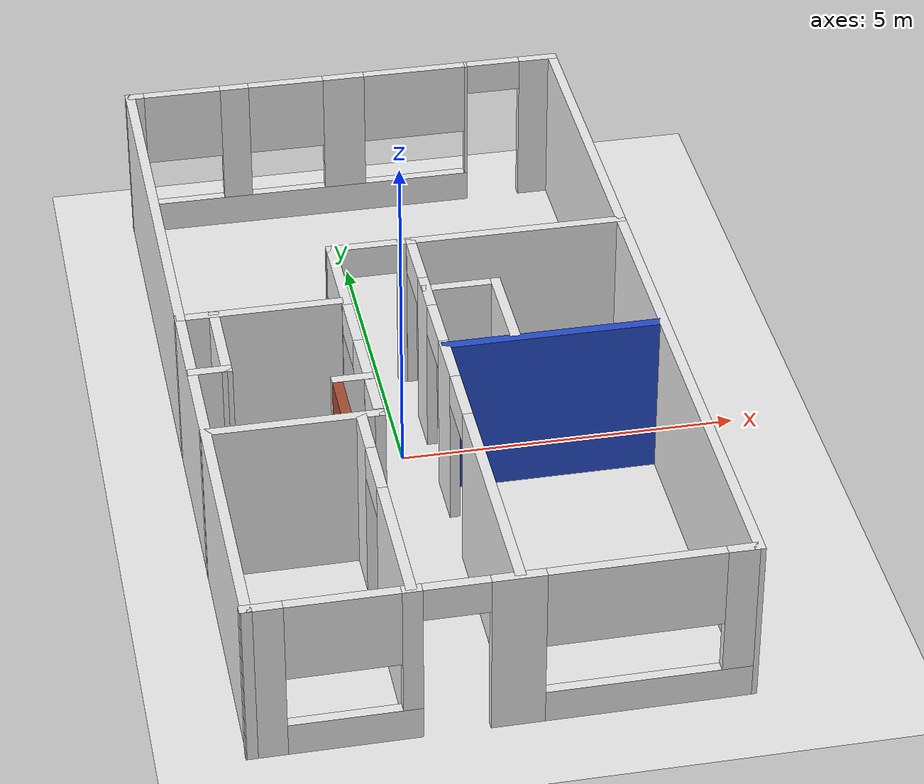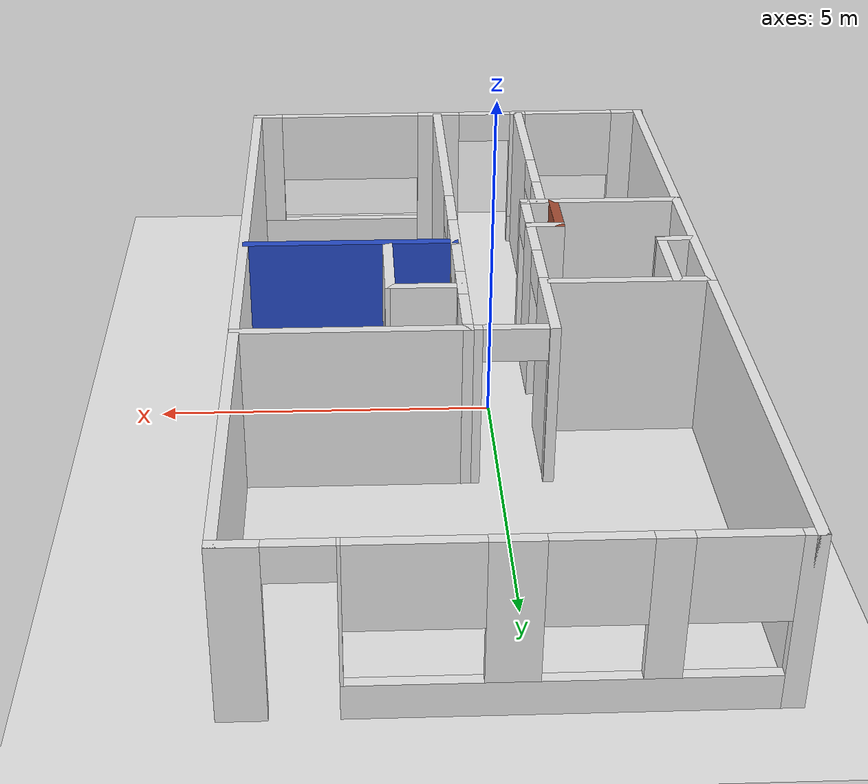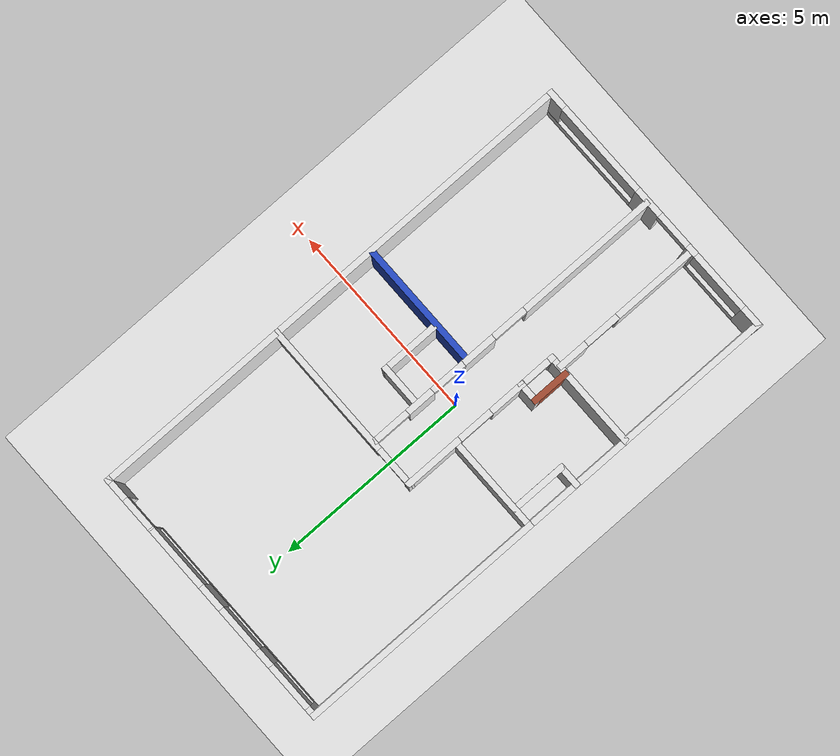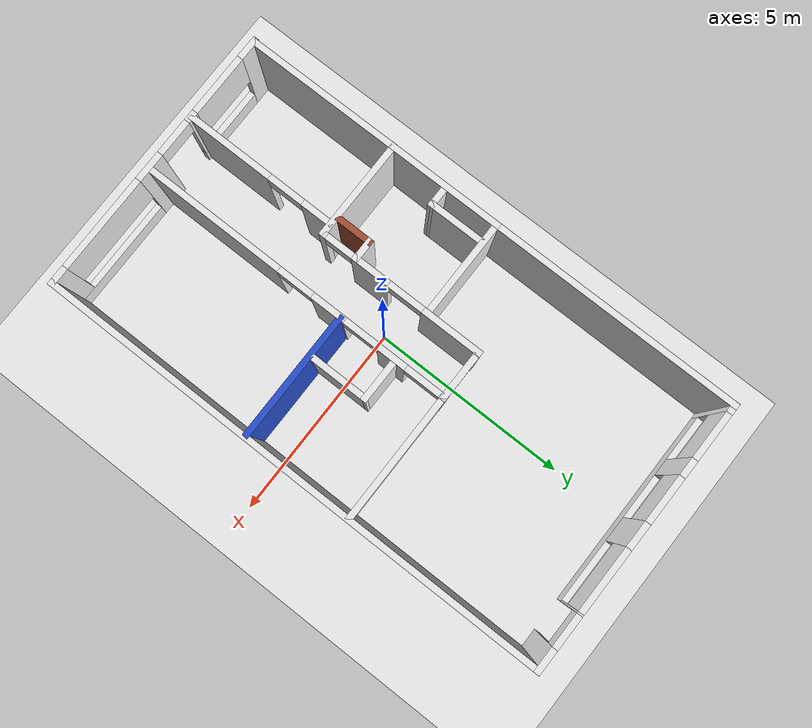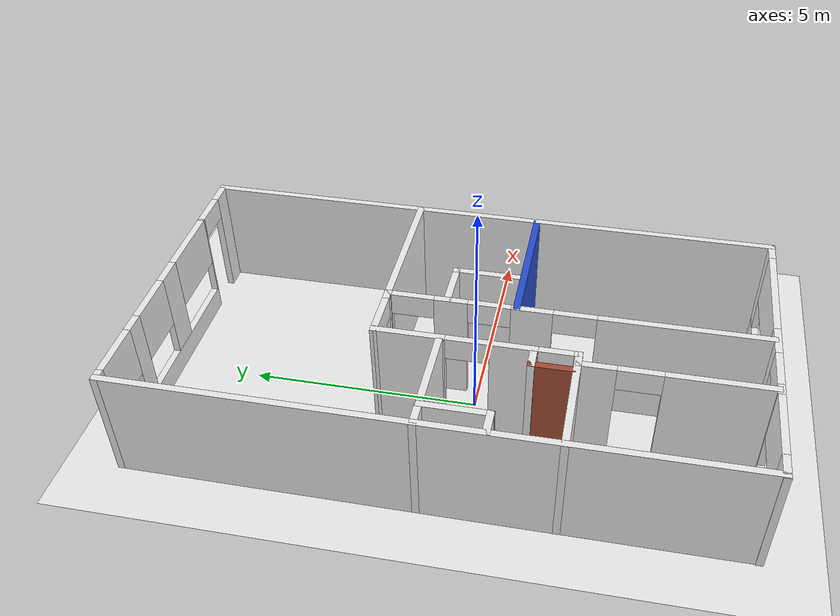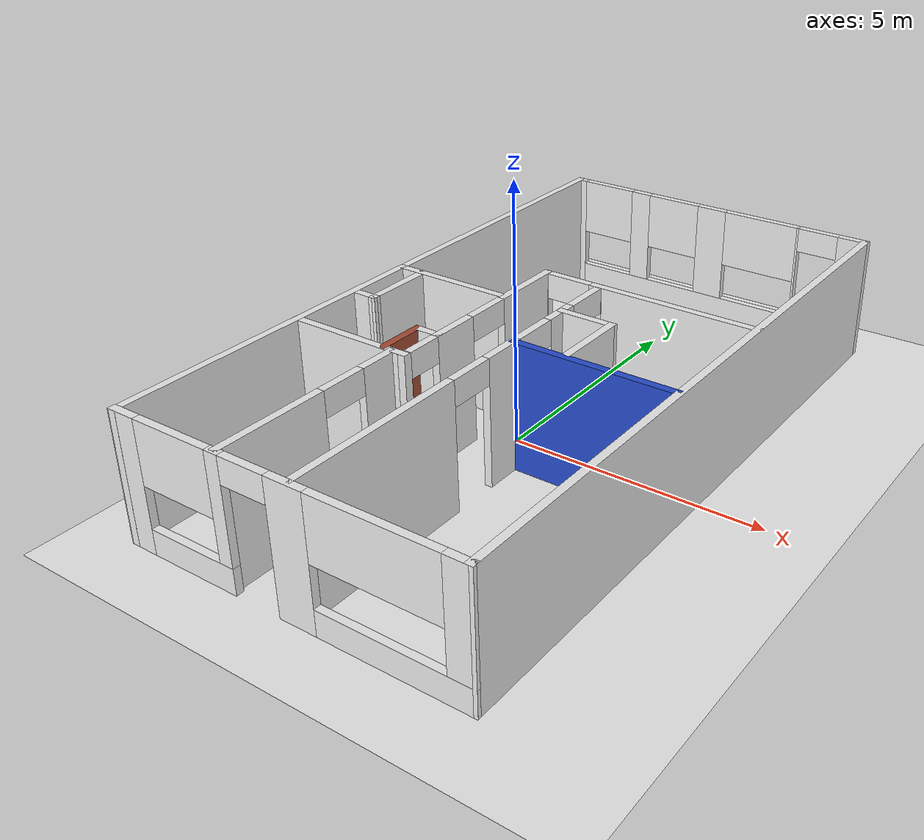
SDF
<sdf version="1.6">
 <world name="default">
  <model name="ground_plane">
   <static>1</static>
   <link name="link">
    <collision name="collision">
     <geometry><plane><normal>0 0 1</normal><size>100 100</size></plane></geometry>
     <surface>
      <contact><collide_bitmask>65535</collide_bitmask></contact>
      <friction><ode><mu>100</mu><mu2>50</mu2></ode></friction>
     </surface>
    </collision>
    <visual name="visual">
     <cast_shadows>0</cast_shadows>
     <geometry><plane><normal>0 0 1</normal><size>100 100</size></plane></geometry>
     <material>
      <script><uri>file://media/materials/scripts/gazebo.material</uri><name>Gazebo/White</name></script>
     </material>
    </visual>
   </link>
  </model>
  <model name="myapartment">
   <pose>0.279592 0.405357 0 0 -0 0</pose>
   <link name="Wall_0">
    <pose>0.004026 6.44086 0 0 -0 0</pose>
    <visual name="Wall_0_Visual_0">
     <pose>-3.32899 0 1.25 0 -0 0</pose>
     <geometry><box><size>0.289947 0.15 2.5</size></box></geometry>
     <material>
      <script><uri>file://media/materials/scripts/gazebo.material</uri><name>Gazebo/White</name></script>
      <ambient>1 1 1 1</ambient>
     </material>
     <meta><layer>0</layer></meta>
    </visual>
    <collision name="Wall_0_Collision_0">
     <geometry><box><size>0.289947 0.15 2.5</size></box></geometry>
     <pose>-3.32899 0 1.25 0 -0 0</pose>
    </collision>
    <visual name="Wall_0_Visual_1">
     <pose>3.1619 0 1.25 0 -0 0</pose>
     <geometry><box><size>0.624124 0.15 2.5</size></box></geometry>
     <material>
      <script><uri>file://media/materials/scripts/gazebo.material</uri><name>Gazebo/White</name></script>
      <ambient>1 1 1 1</ambient>
     </material>
     <meta><layer>0</layer></meta>
    </visual>
    <collision name="Wall_0_Collision_1">
     <geometry><box><size>0.624124 0.15 2.5</size></box></geometry>
     <pose>3.1619 0 1.25 0 -0 0</pose>
    </collision>
    <visual name="Wall_0_Visual_2">
     <pose>-0.589588 0 0.25 0 -0 0</pose>
     <geometry><box><size>5.18885 0.15 0.5</size></box></geometry>
     <material>
      <script><uri>file://media/materials/scripts/gazebo.material</uri><name>Gazebo/White</name></script>
      <ambient>1 1 1 1</ambient>
     </material>
     <meta><layer>0</layer></meta>
    </visual>
    <collision name="Wall_0_Collision_2">
     <geometry><box><size>5.18885 0.15 0.5</size></box></geometry>
     <pose>-0.589588 0 0.25 0 -0 0</pose>
    </collision>
    <visual name="Wall_0_Visual_3">
     <pose>-1.75147 0 1.5 0 -0 0</pose>
     <geometry><box><size>0.453064 0.15 2</size></box></geometry>
     <material>
      <script><uri>file://media/materials/scripts/gazebo.material</uri><name>Gazebo/White</name></script>
      <ambient>1 1 1 1</ambient>
     </material>
     <meta><layer>0</layer></meta>
    </visual>
    <collision name="Wall_0_Collision_3">
     <geometry><box><size>0.453064 0.15 2</size></box></geometry>
     <pose>-1.75147 0 1.5 0 -0 0</pose>
    </collision>
    <visual name="Wall_0_Visual_4">
     <pose>-0.00315 0 1.5 0 -0 0</pose>
     <geometry><box><size>0.661624 0.15 2</size></box></geometry>
     <material>
      <script><uri>file://media/materials/scripts/gazebo.material</uri><name>Gazebo/White</name></script>
      <ambient>1 1 1 1</ambient>
     </material>
     <meta><layer>0</layer></meta>
    </visual>
    <collision name="Wall_0_Collision_4">
     <geometry><box><size>0.661624 0.15 2</size></box></geometry>
     <pose>-0.00315 0 1.5 0 -0 0</pose>
    </collision>
    <visual name="Wall_0_Visual_5">
     <pose>1.98354 0 1.5 0 -0 0</pose>
     <geometry><box><size>0.042595 0.15 2</size></box></geometry>
     <material>
      <script><uri>file://media/materials/scripts/gazebo.material</uri><name>Gazebo/White</name></script>
      <ambient>1 1 1 1</ambient>
     </material>
     <meta><layer>0</layer></meta>
    </visual>
    <collision name="Wall_0_Collision_5">
     <geometry><box><size>0.042595 0.15 2</size></box></geometry>
     <pose>1.98354 0 1.5 0 -0 0</pose>
    </collision>
    <visual name="Wall_0_Visual_6">
     <pose>-2.58101 0 1.9 0 -0 0</pose>
     <geometry><box><size>1.20601 0.15 1.2</size></box></geometry>
     <material>
      <script><uri>file://media/materials/scripts/gazebo.material</uri><name>Gazebo/White</name></script>
      <ambient>1 1 1 1</ambient>
     </material>
     <meta><layer>0</layer></meta>
    </visual>
    <collision name="Wall_0_Collision_6">
     <geometry><box><size>1.20601 0.15 1.2</size></box></geometry>
     <pose>-2.58101 0 1.9 0 -0 0</pose>
    </collision>
    <visual name="Wall_0_Visual_7">
     <pose>-0.92945 0 1.9 0 -0 0</pose>
     <geometry><box><size>1.19097 0.15 1.2</size></box></geometry>
     <material>
      <script><uri>file://media/materials/scripts/gazebo.material</uri><name>Gazebo/White</name></script>
      <ambient>1 1 1 1</ambient>
     </material>
     <meta><layer>0</layer></meta>
    </visual>
    <collision name="Wall_0_Collision_7">
     <geometry><box><size>1.19097 0.15 1.2</size></box></geometry>
     <pose>-0.92945 0 1.9 0 -0 0</pose>
    </collision>
    <visual name="Wall_0_Visual_8">
     <pose>1.14495 0 1.9 0 -0 0</pose>
     <geometry><box><size>1.63458 0.15 1.2</size></box></geometry>
     <material>
      <script><uri>file://media/materials/scripts/gazebo.material</uri><name>Gazebo/White</name></script>
      <ambient>1 1 1 1</ambient>
     </material>
     <meta><layer>0</layer></meta>
    </visual>
    <collision name="Wall_0_Collision_8">
     <geometry><box><size>1.63458 0.15 1.2</size></box></geometry>
     <pose>1.14495 0 1.9 0 -0 0</pose>
    </collision>
    <visual name="Wall_0_Visual_9">
     <pose>2.42734 0 2.25 0 -0 0</pose>
     <geometry><box><size>0.845 0.15 0.5</size></box></geometry>
     <material>
      <script><uri>file://media/materials/scripts/gazebo.material</uri><name>Gazebo/White</name></script>
      <ambient>1 1 1 1</ambient>
     </material>
     <meta><layer>0</layer></meta>
    </visual>
    <collision name="Wall_0_Collision_9">
     <geometry><box><size>0.845 0.15 0.5</size></box></geometry>
     <pose>2.42734 0 2.25 0 -0 0</pose>
    </collision>
   </link>
   <link name="Wall_11">
    <pose>0.212101 -2.39403 0 0 -0 -1.5708</pose>
    <visual name="Wall_11_Visual_0">
     <pose>-3.96072 0 1.25 0 -0 0</pose>
     <geometry><box><size>0.163567 0.15 2.5</size></box></geometry>
     <material>
      <script><uri>file://media/materials/scripts/gazebo.material</uri><name>Gazebo/White</name></script>
      <ambient>1 1 1 1</ambient>
     </material>
     <meta><layer>0</layer></meta>
    </visual>
    <collision name="Wall_11_Collision_0">
     <geometry><box><size>0.163567 0.15 2.5</size></box></geometry>
     <pose>-3.96072 0 1.25 0 -0 0</pose>
    </collision>
    <visual name="Wall_11_Visual_1">
     <pose>-2.60981 0 1.25 0 -0 0</pose>
     <geometry><box><size>0.718238 0.15 2.5</size></box></geometry>
     <material>
      <script><uri>file://media/materials/scripts/gazebo.material</uri><name>Gazebo/White</name></script>
      <ambient>1 1 1 1</ambient>
     </material>
     <meta><layer>0</layer></meta>
    </visual>
    <collision name="Wall_11_Collision_1">
     <geometry><box><size>0.718238 0.15 2.5</size></box></geometry>
     <pose>-2.60981 0 1.25 0 -0 0</pose>
    </collision>
    <visual name="Wall_11_Visual_2">
     <pose>-0.904498 0 1.25 0 -0 0</pose>
     <geometry><box><size>0.872395 0.15 2.5</size></box></geometry>
     <material>
      <script><uri>file://media/materials/scripts/gazebo.material</uri><name>Gazebo/White</name></script>
      <ambient>1 1 1 1</ambient>
     </material>
     <meta><layer>0</layer></meta>
    </visual>
    <collision name="Wall_11_Collision_2">
     <geometry><box><size>0.872395 0.15 2.5</size></box></geometry>
     <pose>-0.904498 0 1.25 0 -0 0</pose>
    </collision>
    <visual name="Wall_11_Visual_3">
     <pose>2.2421 0 1.25 0 -0 0</pose>
     <geometry><box><size>3.6008 0.15 2.5</size></box></geometry>
     <material>
      <script><uri>file://media/materials/scripts/gazebo.material</uri><name>Gazebo/White</name></script>
      <ambient>1 1 1 1</ambient>
     </material>
     <meta><layer>0</layer></meta>
    </visual>
    <collision name="Wall_11_Collision_3">
     <geometry><box><size>3.6008 0.15 2.5</size></box></geometry>
     <pose>2.2421 0 1.25 0 -0 0</pose>
    </collision>
    <visual name="Wall_11_Visual_4">
     <pose>-3.42393 0 2.25 0 -0 0</pose>
     <geometry><box><size>0.91 0.15 0.5</size></box></geometry>
     <material>
      <script><uri>file://media/materials/scripts/gazebo.material</uri><name>Gazebo/White</name></script>
      <ambient>1 1 1 1</ambient>
     </material>
     <meta><layer>0</layer></meta>
    </visual>
    <collision name="Wall_11_Collision_4">
     <geometry><box><size>0.91 0.15 0.5</size></box></geometry>
     <pose>-3.42393 0 2.25 0 -0 0</pose>
    </collision>
    <visual name="Wall_11_Visual_5">
     <pose>-1.7957 0 2.25 0 -0 0</pose>
     <geometry><box><size>0.91 0.15 0.5</size></box></geometry>
     <material>
      <script><uri>file://media/materials/scripts/gazebo.material</uri><name>Gazebo/White</name></script>
      <ambient>1 1 1 1</ambient>
     </material>
     <meta><layer>0</layer></meta>
    </visual>
    <collision name="Wall_11_Collision_5">
     <geometry><box><size>0.91 0.15 0.5</size></box></geometry>
     <pose>-1.7957 0 2.25 0 -0 0</pose>
    </collision>
    <visual name="Wall_11_Visual_6">
     <pose>-0.0133 0 2.25 0 -0 0</pose>
     <geometry><box><size>0.91 0.15 0.5</size></box></geometry>
     <material>
      <script><uri>file://media/materials/scripts/gazebo.material</uri><name>Gazebo/White</name></script>
      <ambient>1 1 1 1</ambient>
     </material>
     <meta><layer>0</layer></meta>
    </visual>
    <collision name="Wall_11_Collision_6">
     <geometry><box><size>0.91 0.15 0.5</size></box></geometry>
     <pose>-0.0133 0 2.25 0 -0 0</pose>
    </collision>
   </link>
   <link name="Wall_13">
    <collision name="Wall_13_Collision">
     <geometry><box><size>3.25 0.15 2.5</size></box></geometry>
     <pose>0 0 1.25 0 -0 0</pose>
    </collision>
    <visual name="Wall_13_Visual">
     <pose>0 0 1.25 0 -0 0</pose>
     <geometry><box><size>3.25 0.15 2.5</size></box></geometry>
     <material>
      <script><uri>file://media/materials/scripts/gazebo.material</uri><name>Gazebo/Blue</name></script>
      <ambient>1 1 1 1</ambient>
     </material>
     <meta><layer>0</layer></meta>
    </visual>
    <pose>1.79413 -1.1673 0 0 -0 0</pose>
   </link>
   <link name="Wall_15">
    <collision name="Wall_15_Collision">
     <geometry><box><size>2.57057 0.15 2.5</size></box></geometry>
     <pose>0 0 1.25 0 -0 0</pose>
    </collision>
    <visual name="Wall_15_Visual">
     <pose>0 0 1.25 0 -0 0</pose>
     <geometry><box><size>2.57057 0.15 2.5</size></box></geometry>
     <material>
      <script><uri>file://media/materials/scripts/gazebo.material</uri><name>Gazebo/White</name></script>
      <ambient>1 1 1 1</ambient>
     </material>
     <meta><layer>0</layer></meta>
    </visual>
    <pose>-2.18397 -2.58264 0 0 -0 0.001239</pose>
   </link>
   <link name="Wall_16">
    <pose>-0.976474 -0.504642 0 0 -0 1.57224</pose>
    <visual name="Wall_16_Visual_0">
     <pose>-2.06696 0 1.25 0 -0 0</pose>
     <geometry><box><size>0.16959 0.15 2.5</size></box></geometry>
     <material>
      <script><uri>file://media/materials/scripts/gazebo.material</uri><name>Gazebo/White</name></script>
      <ambient>1 1 1 1</ambient>
     </material>
     <meta><layer>0</layer></meta>
    </visual>
    <collision name="Wall_16_Collision_0">
     <geometry><box><size>0.16959 0.15 2.5</size></box></geometry>
     <pose>-2.06696 0 1.25 0 -0 0</pose>
    </collision>
    <visual name="Wall_16_Visual_1">
     <pose>-0.787342 0 1.25 0 -0 0</pose>
     <geometry><box><size>0.969649 0.15 2.5</size></box></geometry>
     <material>
      <script><uri>file://media/materials/scripts/gazebo.material</uri><name>Gazebo/White</name></script>
      <ambient>1 1 1 1</ambient>
     </material>
     <meta><layer>0</layer></meta>
    </visual>
    <collision name="Wall_16_Collision_1">
     <geometry><box><size>0.969649 0.15 2.5</size></box></geometry>
     <pose>-0.787342 0 1.25 0 -0 0</pose>
    </collision>
    <visual name="Wall_16_Visual_2">
     <pose>1.37962 0 1.25 0 -0 0</pose>
     <geometry><box><size>1.54427 0.15 2.5</size></box></geometry>
     <material>
      <script><uri>file://media/materials/scripts/gazebo.material</uri><name>Gazebo/White</name></script>
      <ambient>1 1 1 1</ambient>
     </material>
     <meta><layer>0</layer></meta>
    </visual>
    <collision name="Wall_16_Collision_2">
     <geometry><box><size>1.54427 0.15 2.5</size></box></geometry>
     <pose>1.37962 0 1.25 0 -0 0</pose>
    </collision>
    <visual name="Wall_16_Visual_3">
     <pose>-1.62717 0 2.25 0 -0 0</pose>
     <geometry><box><size>0.71 0.15 0.5</size></box></geometry>
     <material>
      <script><uri>file://media/materials/scripts/gazebo.material</uri><name>Gazebo/White</name></script>
      <ambient>1 1 1 1</ambient>
     </material>
     <meta><layer>0</layer></meta>
    </visual>
    <collision name="Wall_16_Collision_3">
     <geometry><box><size>0.71 0.15 0.5</size></box></geometry>
     <pose>-1.62717 0 2.25 0 -0 0</pose>
    </collision>
    <visual name="Wall_16_Visual_4">
     <pose>0.152483 0 2.25 0 -0 0</pose>
     <geometry><box><size>0.91 0.15 0.5</size></box></geometry>
     <material>
      <script><uri>file://media/materials/scripts/gazebo.material</uri><name>Gazebo/White</name></script>
      <ambient>1 1 1 1</ambient>
     </material>
     <meta><layer>0</layer></meta>
    </visual>
    <collision name="Wall_16_Collision_4">
     <geometry><box><size>0.91 0.15 0.5</size></box></geometry>
     <pose>0.152483 0 2.25 0 -0 0</pose>
    </collision>
   </link>
   <link name="Wall_2">
    <collision name="Wall_2_Collision">
     <geometry><box><size>2.44429 0.15 2.5</size></box></geometry>
     <pose>0 0 1.25 0 -0 0</pose>
    </collision>
    <visual name="Wall_2_Visual">
     <pose>0 0 1.25 0 -0 0</pose>
     <geometry><box><size>2.44429 0.15 2.5</size></box></geometry>
     <material>
      <script><uri>file://media/materials/scripts/gazebo.material</uri><name>Gazebo/White</name></script>
      <ambient>1 1 1 1</ambient>
     </material>
     <meta><layer>0</layer></meta>
    </visual>
    <pose>-2.24753 0.21226 0 0 -0 0.001223</pose>
   </link>
   <link name="Wall_20">
    <collision name="Wall_20_Collision">
     <geometry><box><size>1.16648 0.15 2.5</size></box></geometry>
     <pose>0 0 1.25 0 -0 0</pose>
    </collision>
    <visual name="Wall_20_Visual">
     <pose>0 0 1.25 0 -0 0</pose>
     <geometry><box><size>1.16648 0.15 2.5</size></box></geometry>
     <material>
      <script><uri>file://media/materials/scripts/gazebo.material</uri><name>Gazebo/White</name></script>
      <ambient>1 1 1 1</ambient>
     </material>
     <meta><layer>0</layer></meta>
    </visual>
    <pose>0.733441 0.29699 0 0 -0 -0.003108</pose>
   </link>
   <link name="Wall_21">
    <collision name="Wall_21_Collision">
     <geometry><box><size>1.5 0.15 2.5</size></box></geometry>
     <pose>0 0 1.25 0 -0 0</pose>
    </collision>
    <visual name="Wall_21_Visual">
     <pose>0 0 1.25 0 -0 0</pose>
     <geometry><box><size>1.5 0.15 2.5</size></box></geometry>
     <material>
      <script><uri>file://media/materials/scripts/gazebo.material</uri><name>Gazebo/White</name></script>
      <ambient>1 1 1 1</ambient>
     </material>
     <meta><layer>0</layer></meta>
    </visual>
    <pose>1.24163 -0.379589 0 0 -0 -1.5708</pose>
   </link>
   <link name="Wall_23">
    <collision name="Wall_23_Collision">
     <geometry><box><size>0.627823 0.15 2.5</size></box></geometry>
     <pose>0 0 1.25 0 -0 0</pose>
    </collision>
    <visual name="Wall_23_Visual">
     <pose>0 0 1.25 0 -0 0</pose>
     <geometry><box><size>0.627823 0.15 2.5</size></box></geometry>
     <material>
      <script><uri>file://media/materials/scripts/gazebo.material</uri><name>Gazebo/White</name></script>
      <ambient>1 1 1 1</ambient>
     </material>
     <meta><layer>0</layer></meta>
    </visual>
    <pose>-3.14109 -1.14756 0 0 -0 -0.002313</pose>
   </link>
   <link name="Wall_24">
    <collision name="Wall_24_Collision">
     <geometry><box><size>1.5 0.15 2.5</size></box></geometry>
     <pose>0 0 1.25 0 -0 0</pose>
    </collision>
    <visual name="Wall_24_Visual">
     <pose>0 0 1.25 0 -0 0</pose>
     <geometry><box><size>1.5 0.15 2.5</size></box></geometry>
     <material>
      <script><uri>file://media/materials/scripts/gazebo.material</uri><name>Gazebo/White</name></script>
      <ambient>1 1 1 1</ambient>
     </material>
     <meta><layer>0</layer></meta>
    </visual>
    <pose>-2.90218 -0.473117 0 0 -0 1.5708</pose>
   </link>
   <link name="Wall_26">
    <collision name="Wall_26_Collision">
     <geometry><box><size>1.01076 0.15 2.5</size></box></geometry>
     <pose>0 0 1.25 0 -0 0</pose>
    </collision>
    <visual name="Wall_26_Visual">
     <pose>0 0 1.25 0 -0 0</pose>
     <geometry><box><size>1.01076 0.15 2.5</size></box></geometry>
     <material>
      <script><uri>file://media/materials/scripts/gazebo.material</uri><name>Gazebo/Bricks</name></script>
      <ambient>0.333333 0.666667 1 1</ambient>
     </material>
     <meta><layer>0</layer></meta>
    </visual>
    <pose>-1.42759 -2.12454 0 0 -0 1.5708</pose>
   </link>
   <link name="Wall_27">
    <collision name="Wall_27_Collision">
     <geometry><box><size>0.597111 0.15 2.5</size></box></geometry>
     <pose>0 0 1.25 0 -0 0</pose>
    </collision>
    <visual name="Wall_27_Visual">
     <pose>0 0 1.25 0 -0 0</pose>
     <geometry><box><size>0.597111 0.15 2.5</size></box></geometry>
     <material>
      <script><uri>file://media/materials/scripts/gazebo.material</uri><name>Gazebo/White</name></script>
      <ambient>1 1 1 1</ambient>
     </material>
     <meta><layer>0</layer></meta>
    </visual>
    <pose>-1.20404 -1.69387 0 0 -0 0</pose>
   </link>
   <link name="Wall_30">
    <pose>-1.23247 -4.50024 0 0 -0 1.5708</pose>
    <visual name="Wall_30_Visual_0">
     <pose>-0.859688 0 1.25 0 -0 0</pose>
     <geometry><box><size>2.20454 0.15 2.5</size></box></geometry>
     <material>
      <script><uri>file://media/materials/scripts/gazebo.material</uri><name>Gazebo/White</name></script>
      <ambient>1 1 1 1</ambient>
     </material>
     <meta><layer>0</layer></meta>
    </visual>
    <collision name="Wall_30_Collision_0">
     <geometry><box><size>2.20454 0.15 2.5</size></box></geometry>
     <pose>-0.859688 0 1.25 0 -0 0</pose>
    </collision>
    <visual name="Wall_30_Visual_1">
     <pose>1.55727 0 1.25 0 -0 0</pose>
     <geometry><box><size>0.809377 0.15 2.5</size></box></geometry>
     <material>
      <script><uri>file://media/materials/scripts/gazebo.material</uri><name>Gazebo/White</name></script>
      <ambient>1 1 1 1</ambient>
     </material>
     <meta><layer>0</layer></meta>
    </visual>
    <collision name="Wall_30_Collision_1">
     <geometry><box><size>0.809377 0.15 2.5</size></box></geometry>
     <pose>1.55727 0 1.25 0 -0 0</pose>
    </collision>
    <visual name="Wall_30_Visual_2">
     <pose>0.69758 0 2.25 0 -0 0</pose>
     <geometry><box><size>0.91 0.15 0.5</size></box></geometry>
     <material>
      <script><uri>file://media/materials/scripts/gazebo.material</uri><name>Gazebo/White</name></script>
      <ambient>1 1 1 1</ambient>
     </material>
     <meta><layer>0</layer></meta>
    </visual>
    <collision name="Wall_30_Collision_2">
     <geometry><box><size>0.91 0.15 0.5</size></box></geometry>
     <pose>0.69758 0 2.25 0 -0 0</pose>
    </collision>
   </link>
   <link name="Wall_4">
    <pose>1.20903 1.56986 0 0 -0 -0.000914</pose>
    <visual name="Wall_4_Visual_0">
     <pose>-2.18431 0 1.25 0 -0 0</pose>
     <geometry><box><size>0.158379 0.15 2.5</size></box></geometry>
     <material>
      <script><uri>file://media/materials/scripts/gazebo.material</uri><name>Gazebo/White</name></script>
      <ambient>1 1 1 1</ambient>
     </material>
     <meta><layer>0</layer></meta>
    </visual>
    <collision name="Wall_4_Collision_0">
     <geometry><box><size>0.158379 0.15 2.5</size></box></geometry>
     <pose>-2.18431 0 1.25 0 -0 0</pose>
    </collision>
    <visual name="Wall_4_Visual_1">
     <pose>0.53419 0 1.25 0 -0 0</pose>
     <geometry><box><size>3.45862 0.15 2.5</size></box></geometry>
     <material>
      <script><uri>file://media/materials/scripts/gazebo.material</uri><name>Gazebo/White</name></script>
      <ambient>1 1 1 1</ambient>
     </material>
     <meta><layer>0</layer></meta>
    </visual>
    <collision name="Wall_4_Collision_1">
     <geometry><box><size>3.45862 0.15 2.5</size></box></geometry>
     <pose>0.53419 0 1.25 0 -0 0</pose>
    </collision>
    <visual name="Wall_4_Visual_2">
     <pose>-1.65012 0 2.25 0 -0 0</pose>
     <geometry><box><size>0.91 0.15 0.5</size></box></geometry>
     <material>
      <script><uri>file://media/materials/scripts/gazebo.material</uri><name>Gazebo/White</name></script>
      <ambient>1 1 1 1</ambient>
     </material>
     <meta><layer>0</layer></meta>
    </visual>
    <collision name="Wall_4_Collision_2">
     <geometry><box><size>0.91 0.15 0.5</size></box></geometry>
     <pose>-1.65012 0 2.25 0 -0 0</pose>
    </collision>
   </link>
   <link name="Wall_6">
    <collision name="Wall_6_Collision">
     <geometry><box><size>6.38 0.15 2.5</size></box></geometry>
     <pose>0 0 1.25 0 -0 0</pose>
    </collision>
    <visual name="Wall_6_Visual">
     <pose>0 0 1.25 0 -0 0</pose>
     <geometry><box><size>6.38 0.15 2.5</size></box></geometry>
     <material>
      <script><uri>file://media/materials/scripts/gazebo.material</uri><name>Gazebo/White</name></script>
      <ambient>1 1 1 1</ambient>
     </material>
     <meta><layer>0</layer></meta>
    </visual>
    <pose>-3.39447 3.32586 0 0 -0 -1.5708</pose>
   </link>
   <link name="Wall_7">
    <collision name="Wall_7_Collision">
     <geometry><box><size>6.80168 0.15 2.5</size></box></geometry>
     <pose>0 0 1.25 0 -0 0</pose>
    </collision>
    <visual name="Wall_7_Visual">
     <pose>0 0 1.25 0 -0 0</pose>
     <geometry><box><size>6.80168 0.15 2.5</size></box></geometry>
     <material>
      <script><uri>file://media/materials/scripts/gazebo.material</uri><name>Gazebo/White</name></script>
      <ambient>1 1 1 1</ambient>
     </material>
     <meta><layer>0</layer></meta>
    </visual>
    <pose>-3.39 -3.11487 0 0 -0 -1.56945</pose>
   </link>
   <link name="Wall_8">
    <pose>-9.6e-05 -6.42837 0 0 -0 0.003593</pose>
    <visual name="Wall_8_Visual_0">
     <pose>-3.19294 0 1.25 0 -0 0</pose>
     <geometry><box><size>0.569398 0.15 2.5</size></box></geometry>
     <material>
      <script><uri>file://media/materials/scripts/gazebo.material</uri><name>Gazebo/White</name></script>
      <ambient>1 1 1 1</ambient>
     </material>
     <meta><layer>0</layer></meta>
    </visual>
    <collision name="Wall_8_Collision_0">
     <geometry><box><size>0.569398 0.15 2.5</size></box></geometry>
     <pose>-3.19294 0 1.25 0 -0 0</pose>
    </collision>
    <visual name="Wall_8_Visual_1">
     <pose>0.189812 0 1.25 0 -0 0</pose>
     <geometry><box><size>0.738405 0.15 2.5</size></box></geometry>
     <material>
      <script><uri>file://media/materials/scripts/gazebo.material</uri><name>Gazebo/White</name></script>
      <ambient>1 1 1 1</ambient>
     </material>
     <meta><layer>0</layer></meta>
    </visual>
    <collision name="Wall_8_Collision_1">
     <geometry><box><size>0.738405 0.15 2.5</size></box></geometry>
     <pose>0.189812 0 1.25 0 -0 0</pose>
    </collision>
    <visual name="Wall_8_Visual_2">
     <pose>-1.99882 0 0.25 0 -0 0</pose>
     <geometry><box><size>1.81886 0.15 0.5</size></box></geometry>
     <material>
      <script><uri>file://media/materials/scripts/gazebo.material</uri><name>Gazebo/White</name></script>
      <ambient>1 1 1 1</ambient>
     </material>
     <meta><layer>0</layer></meta>
    </visual>
    <collision name="Wall_8_Collision_2">
     <geometry><box><size>1.81886 0.15 0.5</size></box></geometry>
     <pose>-1.99882 0 0.25 0 -0 0</pose>
    </collision>
    <visual name="Wall_8_Visual_3">
     <pose>2.01833 0 0.25 0 -0 0</pose>
     <geometry><box><size>2.91863 0.15 0.5</size></box></geometry>
     <material>
      <script><uri>file://media/materials/scripts/gazebo.material</uri><name>Gazebo/White</name></script>
      <ambient>1 1 1 1</ambient>
     </material>
     <meta><layer>0</layer></meta>
    </visual>
    <collision name="Wall_8_Collision_3">
     <geometry><box><size>2.91863 0.15 0.5</size></box></geometry>
     <pose>2.01833 0 0.25 0 -0 0</pose>
    </collision>
    <visual name="Wall_8_Visual_4">
     <pose>-1.22615 0 1.5 0 -0 0</pose>
     <geometry><box><size>0.27352 0.15 2</size></box></geometry>
     <material>
      <script><uri>file://media/materials/scripts/gazebo.material</uri><name>Gazebo/White</name></script>
      <ambient>1 1 1 1</ambient>
     </material>
     <meta><layer>0</layer></meta>
    </visual>
    <collision name="Wall_8_Collision_4">
     <geometry><box><size>0.27352 0.15 2</size></box></geometry>
     <pose>-1.22615 0 1.5 0 -0 0</pose>
    </collision>
    <visual name="Wall_8_Visual_5">
     <pose>-1.22615 0 1.5 0 -0 0</pose>
     <geometry><box><size>0.27352 0.15 2</size></box></geometry>
     <material>
      <script><uri>file://media/materials/scripts/gazebo.material</uri><name>Gazebo/White</name></script>
      <ambient>1 1 1 1</ambient>
     </material>
     <meta><layer>0</layer></meta>
    </visual>
    <collision name="Wall_8_Collision_5">
     <geometry><box><size>0.27352 0.15 2</size></box></geometry>
     <pose>-1.22615 0 1.5 0 -0 0</pose>
    </collision>
    <visual name="Wall_8_Visual_6">
     <pose>3.22578 0 1.5 0 -0 0</pose>
     <geometry><box><size>0.503738 0.15 2</size></box></geometry>
     <material>
      <script><uri>file://media/materials/scripts/gazebo.material</uri><name>Gazebo/White</name></script>
      <ambient>1 1 1 1</ambient>
     </material>
     <meta><layer>0</layer></meta>
    </visual>
    <collision name="Wall_8_Collision_6">
     <geometry><box><size>0.503738 0.15 2</size></box></geometry>
     <pose>3.22578 0 1.5 0 -0 0</pose>
    </collision>
    <visual name="Wall_8_Visual_7">
     <pose>-2.13558 0 1.9 0 -0 0</pose>
     <geometry><box><size>1.54534 0.15 1.2</size></box></geometry>
     <material>
      <script><uri>file://media/materials/scripts/gazebo.material</uri><name>Gazebo/White</name></script>
      <ambient>1 1 1 1</ambient>
     </material>
     <meta><layer>0</layer></meta>
    </visual>
    <collision name="Wall_8_Collision_7">
     <geometry><box><size>1.54534 0.15 1.2</size></box></geometry>
     <pose>-2.13558 0 1.9 0 -0 0</pose>
    </collision>
    <visual name="Wall_8_Visual_8">
     <pose>1.76646 0 1.9 0 -0 0</pose>
     <geometry><box><size>2.41489 0.15 1.2</size></box></geometry>
     <material>
      <script><uri>file://media/materials/scripts/gazebo.material</uri><name>Gazebo/White</name></script>
      <ambient>1 1 1 1</ambient>
     </material>
     <meta><layer>0</layer></meta>
    </visual>
    <collision name="Wall_8_Collision_8">
     <geometry><box><size>2.41489 0.15 1.2</size></box></geometry>
     <pose>1.76646 0 1.9 0 -0 0</pose>
    </collision>
    <visual name="Wall_8_Visual_9">
     <pose>-0.634391 0 2.25 0 -0 0</pose>
     <geometry><box><size>0.91 0.15 0.5</size></box></geometry>
     <material>
      <script><uri>file://media/materials/scripts/gazebo.material</uri><name>Gazebo/White</name></script>
      <ambient>1 1 1 1</ambient>
     </material>
     <meta><layer>0</layer></meta>
    </visual>
    <collision name="Wall_8_Collision_9">
     <geometry><box><size>0.91 0.15 0.5</size></box></geometry>
     <pose>-0.634391 0 2.25 0 -0 0</pose>
    </collision>
    <visual name="Wall_8_Visual_10">
     <pose>-0.634391 0 2.25 0 -0 0</pose>
     <geometry><box><size>0.91 0.15 0.5</size></box></geometry>
     <material>
      <script><uri>file://media/materials/scripts/gazebo.material</uri><name>Gazebo/White</name></script>
      <ambient>1 1 1 1</ambient>
     </material>
     <meta><layer>0</layer></meta>
    </visual>
    <collision name="Wall_8_Collision_10">
     <geometry><box><size>0.91 0.15 0.5</size></box></geometry>
     <pose>-0.634391 0 2.25 0 -0 0</pose>
    </collision>
   </link>
   <link name="Wall_9">
    <collision name="Wall_9_Collision">
     <geometry><box><size>13.007 0.15 2.5</size></box></geometry>
     <pose>0 0 1.25 0 -0 0</pose>
    </collision>
    <visual name="Wall_9_Visual">
     <pose>0 0 1.25 0 -0 0</pose>
     <geometry><box><size>13.007 0.15 2.5</size></box></geometry>
     <material>
      <script><uri>file://media/materials/scripts/gazebo.material</uri><name>Gazebo/White</name></script>
      <ambient>1 1 1 1</ambient>
     </material>
     <meta><layer>0</layer></meta>
    </visual>
    <pose>3.40253 0.012358 0 0 -0 1.5708</pose>
   </link>
   <static>1</static>
  </model>
 </world>
</sdf>
